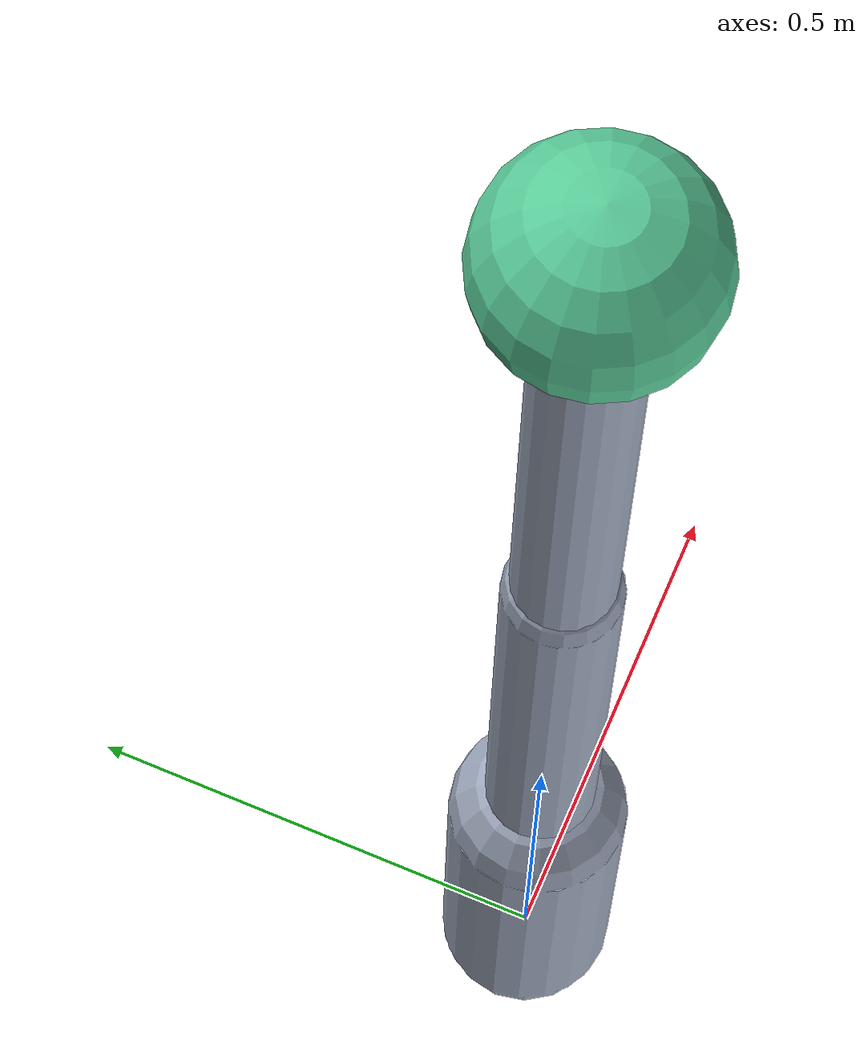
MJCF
<mujoco model="keeper">
  <compiler angle="radian"/>
  <option timestep="0.004" gravity="0 0 -9.81"/>

  <default>
    <joint type="hinge" damping="2.0" armature="0.05"/>
    <geom type="capsule" size="0.055" density="700" rgba="0.62 0.66 0.74 1"/>
    <motor ctrlrange="-260 260" gear="1"/>
  </default>

  <worldbody>
    <body name="base" pos="0 0 0.35">
      <joint name="yaw" axis="0 0 1" range="-3.1 3.1"/>
      <geom name="base_g" fromto="0 0 -0.35 0 0 0.05" size="0.09"/>
      <body name="upper" pos="0 0 0.05">
        <joint name="shoulder" axis="0 1 0" range="-2.4 2.4"/>
        <geom name="upper_g" fromto="0 0 0 0 0 0.62"/>
        <body name="fore" pos="0 0 0.62">
          <joint name="elbow" axis="0 1 0" range="-2.7 2.7"/>
          <geom name="fore_g" fromto="0 0 0 0 0 0.52" size="0.048"/>
          <body name="wrist" pos="0 0 0.52">
            <joint name="wrist_pitch" axis="0 1 0" range="-2.0 2.0"/>
            <geom name="wrist_g" fromto="0 0 0 0 0 0.14" size="0.042"/>
            <body name="hand" pos="0 0 0.14">
              <joint name="wrist_yaw" axis="0 0 1" range="-2.6 2.6"/>
              <geom name="hand_g" type="sphere" size="0.10" rgba="0.35 0.80 0.60 1"/>
            </body>
          </body>
        </body>
      </body>
    </body>
  </worldbody>

  <actuator>
    <motor name="m_yaw" joint="yaw"/>
    <motor name="m_shoulder" joint="shoulder"/>
    <motor name="m_elbow" joint="elbow"/>
    <motor name="m_wrist_pitch" joint="wrist_pitch"/>
    <motor name="m_wrist_yaw" joint="wrist_yaw"/>
  </actuator>
</mujoco>
